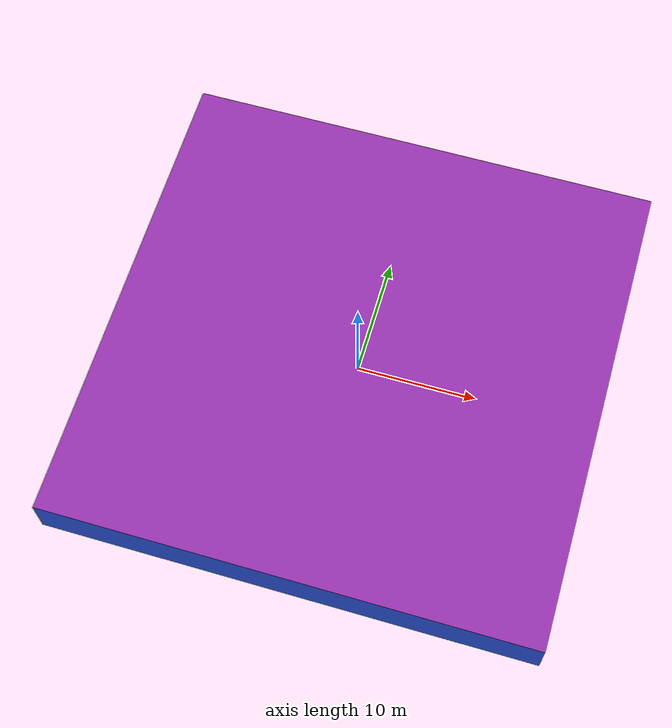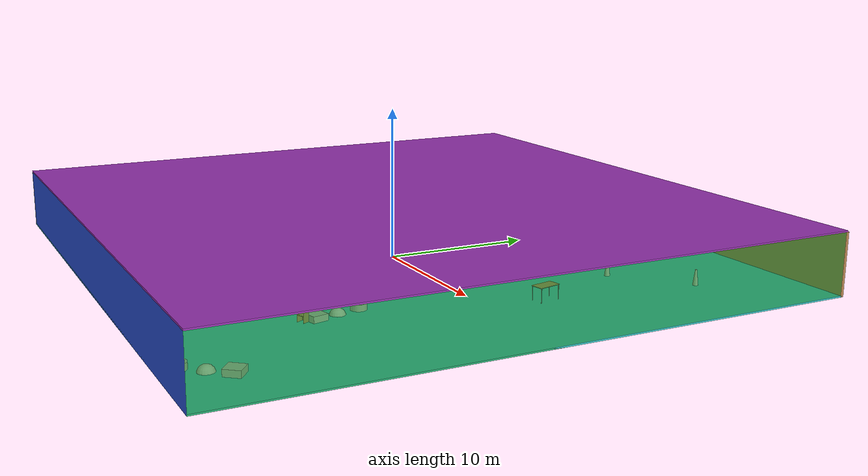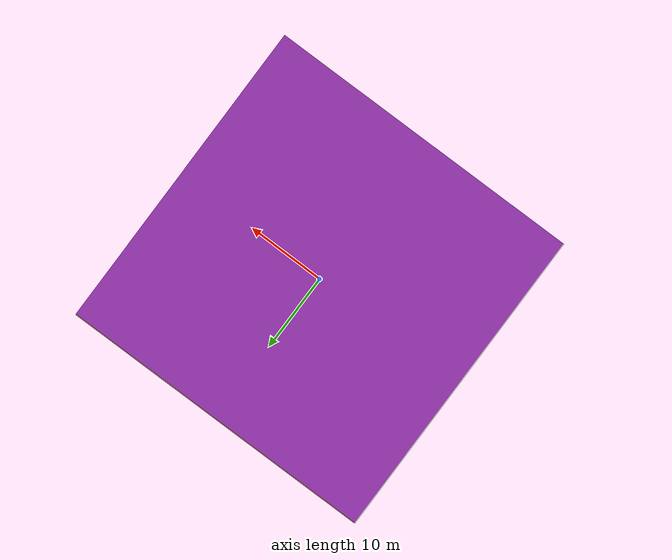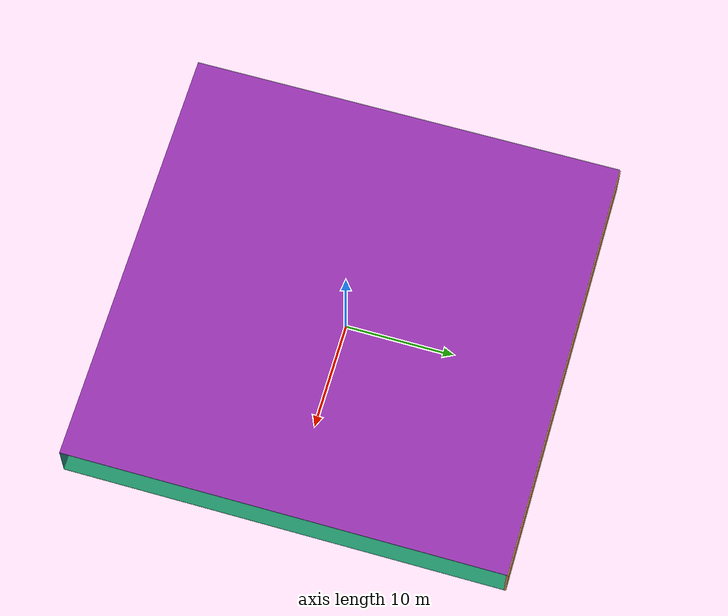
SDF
<sdf version="1.4">
 <world name="default">
  <physics type="ode">
   <max_step_size>0.001</max_step_size>
   <real_time_factor>1</real_time_factor>
   <real_time_update_rate>1000</real_time_update_rate>
   <gravity>0 0 -9.8</gravity>
  </physics>
  <scene><ambient>0.4 0.4 0.4 1</ambient><background>0.7 0.7 0.7 1</background><shadows>1</shadows></scene>
  <model name="Surrounding">
   <static>1</static>
   <link name="Ceiling">
    <collision name="Ceiling_Collision"><geometry><box><size>40 40 0.1</size></box></geometry></collision>
    <visual name="Ceiling_Visual">
     <geometry><box><size>40 40 0.1</size></box></geometry>
     <material>
      <script><uri>file://media/materials/scripts/gazebo.material</uri><name>Gazebo/PurpleGlow</name></script>
     </material>
    </visual>
    <pose>0 0 4.05 0 0 0</pose>
   </link>
   <link name="Wall_South">
    <collision name="Wall_South_Collision">
     <geometry><box><size>40 0 4</size></box></geometry>
     <pose>0 0 2 0 -0 0</pose>
    </collision>
    <visual name="Wall_South_Visual">
     <pose>0 0 2 0 -0 0</pose>
     <geometry><box><size>40 0 4</size></box></geometry>
     <material>
      <script><uri>file://media/materials/scripts/gazebo.material</uri><name>Gazebo/BlueGlow</name></script>
     </material>
    </visual>
    <velocity_decay><linear>0</linear><angular>0</angular></velocity_decay>
    <pose>0 -20 0 0 -0 0</pose>
   </link>
   <link name="Wall_East">
    <collision name="Wall_21_Collision">
     <geometry><box><size>40 0 4</size></box></geometry>
     <pose>0 0 2 0 -0 0</pose>
    </collision>
    <visual name="Wall_21_Visual">
     <pose>0 0 2 0 -0 0</pose>
     <geometry><box><size>40 0 4</size></box></geometry>
     <material>
      <script><uri>file://media/materials/scripts/gazebo.material</uri><name>Gazebo/GreenTransparent</name></script>
     </material>
    </visual>
    <velocity_decay><linear>0</linear><angular>0</angular></velocity_decay>
    <pose>20 0 0 0 -0 1.5708</pose>
   </link>
   <link name="Wall_North">
    <collision name="Wall_22_Collision">
     <geometry><box><size>40 0.2 4</size></box></geometry>
     <pose>0 0 2 0 -0 0</pose>
    </collision>
    <visual name="Wall_22_Visual">
     <pose>0 0 2 0 -0 0</pose>
     <geometry><box><size>40 0.2 4</size></box></geometry>
     <material>
      <script><uri>file://media/materials/scripts/gazebo.material</uri><name>Gazebo/WoodFloor</name></script>
     </material>
    </visual>
    <velocity_decay><linear>0</linear><angular>0</angular></velocity_decay>
    <pose>0 20 0 0 -0 0</pose>
   </link>
   <link name="Wall_West">
    <collision name="Wall_23_Collision">
     <geometry><box><size>40 0.2 4</size></box></geometry>
     <pose>0 0 2 0 -0 0</pose>
    </collision>
    <visual name="Wall_23_Visual">
     <pose>0 0 2 0 -0 0</pose>
     <geometry><box><size>40 0.2 4</size></box></geometry>
     <material>
      <script><uri>file://media/materials/scripts/gazebo.material</uri><name>Gazebo/White</name></script>
     </material>
    </visual>
    <velocity_decay><linear>0</linear><angular>0</angular></velocity_decay>
    <pose>-20 0 0 0 0 -1.5708</pose>
   </link>
   <link name="Ground_link">
    <collision name="collision">
     <pose>0 0 .05 0 -0 0</pose>
     <geometry><box><size>40 40 0.1</size></box></geometry>
    </collision>
    <visual name="visual">
     <pose>0 0 .05 0 -0 0</pose>
     <geometry><box><size>40 40 0.1</size></box></geometry>
     <material>
      <script>
       <uri>file://media/materials/scripts/gazebo.material</uri>
       <name>Gazebo/TurquoiseGlowOutline</name>
      </script>
     </material>
    </visual>
   </link>
   <static>1</static>
  </model>
  <spherical_coordinates>
   <surface_model>EARTH_WGS84</surface_model>
   <latitude_deg>0</latitude_deg>
   <longitude_deg>0</longitude_deg>
   <elevation>0</elevation>
   <heading_deg>0</heading_deg>
  </spherical_coordinates>
  <light name="lightball_0" type="diffuse">
   <diffuse>0.8 0.8 0.8 1</diffuse>
   <specular>0.2 0.2 0.2 1</specular>
   <attenuation>
    <range>100</range>
    <constant>0.7</constant>
    <linear>0.01</linear>
    <quadratic>0.001</quadratic>
   </attenuation>
   <direction>-0.5 0.1 -0.9</direction>
   <pose>5.22481546199 9.62814802732 1.69528099318 0 0 0</pose>
  </light>
  <light name="lightball_1" type="diffuse">
   <diffuse>0.8 0.8 0.8 1</diffuse>
   <specular>0.2 0.2 0.2 1</specular>
   <attenuation>
    <range>100</range>
    <constant>0.7</constant>
    <linear>0.01</linear>
    <quadratic>0.001</quadratic>
   </attenuation>
   <direction>-0.5 0.1 -0.9</direction>
   <pose>-8.63699206354 -19.8327474447 3.1676409708 0 0 0</pose>
  </light>
  <light name="lightball_2" type="diffuse">
   <diffuse>0.8 0.8 0.8 1</diffuse>
   <specular>0.2 0.2 0.2 1</specular>
   <attenuation>
    <range>100</range>
    <constant>0.7</constant>
    <linear>0.01</linear>
    <quadratic>0.001</quadratic>
   </attenuation>
   <direction>-0.5 0.1 -0.9</direction>
   <pose>-5.20945435141 -5.52379506135 1.81256671486 0 0 0</pose>
  </light>
  <light name="lightball_3" type="diffuse">
   <diffuse>0.8 0.8 0.8 1</diffuse>
   <specular>0.2 0.2 0.2 1</specular>
   <attenuation>
    <range>100</range>
    <constant>0.7</constant>
    <linear>0.01</linear>
    <quadratic>0.001</quadratic>
   </attenuation>
   <direction>-0.5 0.1 -0.9</direction>
   <pose>9.14047730335 -9.70137180614 1.03971877403 0 0 0</pose>
  </light>
  <light name="lightball_4" type="diffuse">
   <diffuse>0.8 0.8 0.8 1</diffuse>
   <specular>0.2 0.2 0.2 1</specular>
   <attenuation>
    <range>100</range>
    <constant>0.7</constant>
    <linear>0.01</linear>
    <quadratic>0.001</quadratic>
   </attenuation>
   <direction>-0.5 0.1 -0.9</direction>
   <pose>-3.20811792861 7.95927164334 2.33598312376 0 0 0</pose>
  </light>
  <light name="lightball_5" type="diffuse">
   <diffuse>0.8 0.8 0.8 1</diffuse>
   <specular>0.2 0.2 0.2 1</specular>
   <attenuation>
    <range>100</range>
    <constant>0.7</constant>
    <linear>0.01</linear>
    <quadratic>0.001</quadratic>
   </attenuation>
   <direction>-0.5 0.1 -0.9</direction>
   <pose>-6.6116461072 17.6763749314 2.99890367389 0 0 0</pose>
  </light>
  <light name="lightball_6" type="diffuse">
   <diffuse>0.8 0.8 0.8 1</diffuse>
   <specular>0.2 0.2 0.2 1</specular>
   <attenuation>
    <range>100</range>
    <constant>0.7</constant>
    <linear>0.01</linear>
    <quadratic>0.001</quadratic>
   </attenuation>
   <direction>-0.5 0.1 -0.9</direction>
   <pose>-10.1625997125 -13.1688150288 2.69767292048 0 0 0</pose>
  </light>
  <light name="lightball_7" type="diffuse">
   <diffuse>0.8 0.8 0.8 1</diffuse>
   <specular>0.2 0.2 0.2 1</specular>
   <attenuation>
    <range>100</range>
    <constant>0.7</constant>
    <linear>0.01</linear>
    <quadratic>0.001</quadratic>
   </attenuation>
   <direction>-0.5 0.1 -0.9</direction>
   <pose>11.5510334335 4.2810467878 3.57197887228 0 0 0</pose>
  </light>
  <light name="lightball_8" type="diffuse">
   <diffuse>0.8 0.8 0.8 1</diffuse>
   <specular>0.2 0.2 0.2 1</specular>
   <attenuation>
    <range>100</range>
    <constant>0.7</constant>
    <linear>0.01</linear>
    <quadratic>0.001</quadratic>
   </attenuation>
   <direction>-0.5 0.1 -0.9</direction>
   <pose>17.9101147585 -17.8230880227 3.62259465346 0 0 0</pose>
  </light>
  <light name="lightball_9" type="diffuse">
   <diffuse>0.8 0.8 0.8 1</diffuse>
   <specular>0.2 0.2 0.2 1</specular>
   <attenuation>
    <range>100</range>
    <constant>0.7</constant>
    <linear>0.01</linear>
    <quadratic>0.001</quadratic>
   </attenuation>
   <direction>-0.5 0.1 -0.9</direction>
   <pose>14.2886404662 12.6013312986 3.34231093803 0 0 0</pose>
  </light>
  <light name="lightball_10" type="diffuse">
   <diffuse>0.8 0.8 0.8 1</diffuse>
   <specular>0.2 0.2 0.2 1</specular>
   <attenuation>
    <range>100</range>
    <constant>0.7</constant>
    <linear>0.01</linear>
    <quadratic>0.001</quadratic>
   </attenuation>
   <direction>-0.5 0.1 -0.9</direction>
   <pose>14.7242025265 7.2470983462 3.72013011435 0 0 0</pose>
  </light>
  <include>
   <uri>model://textured_shapes</uri>
   <pose>-11.5684644594 -7.6200080607 0 0 0 0.544910212463</pose>
  </include>
  <include><uri>model://cabinet</uri><pose>-12.6757522907 -0.259586714181 0 0 0 0.641542610776</pose></include>
  <include>
   <uri>model://textured_shapes</uri>
   <pose>-10.4186225571 8.34297126851 0 0 0 1.47427063869</pose>
  </include>
  <include><uri>model://cabinet</uri><pose>-8.41947221348 -9.64260706941 0 0 0 1.58215965429</pose></include>
  <include>
   <uri>model://textured_shapes</uri>
   <pose>-8.0172070732 11.7004967177 0 0 0 1.09001429618</pose>
  </include>
  <include><uri>model://table</uri><pose>-5.61694448851 12.89384323 0 0 0 0.601454433145</pose></include>
  <include>
   <uri>model://construction_cone</uri>
   <pose>-1.56896226952 -7.82960679422 0 0 0 2.55815039414</pose>
  </include>
  <include>
   <uri>model://textured_shapes</uri>
   <pose>-2.52735254055 0.639827935279 0 0 0 1.39261685899</pose>
  </include>
  <include><uri>model://table</uri><pose>-2.88570779656 3.78001738945 0 0 0 0.0124057301397</pose></include>
  <include><uri>model://cabinet</uri><pose>0.723196690513 -18.5509379799 0 0 0 1.34475113572</pose></include>
  <include><uri>model://cabinet</uri><pose>0.842291045456 -8.04517388698 0 0 0 1.14119134486</pose></include>
  <include>
   <uri>model://textured_shapes</uri>
   <pose>-0.149622978429 1.39009738233 0 0 0 0.207495673977</pose>
  </include>
  <include>
   <uri>model://textured_shapes</uri>
   <pose>4.2047329515 -0.137015015391 0 0 0 2.11436350562</pose>
  </include>
  <include>
   <uri>model://construction_cone</uri>
   <pose>4.31706015318 8.53893462159 0 0 0 2.05653075823</pose>
  </include>
  <include><uri>model://cabinet</uri><pose>4.52945033851 12.0078111306 0 0 0 0.540970590123</pose></include>
  <include><uri>model://cabinet</uri><pose>5.71603212173 -8.63539800603 0 0 0 2.4983761575</pose></include>
  <include><uri>model://cabinet</uri><pose>5.39769370893 7.39123539984 0 0 0 0.191111578605</pose></include>
  <include><uri>model://cabinet</uri><pose>10.3556759372 -10.6020779775 0 0 0 2.04808442642</pose></include>
  <include>
   <uri>model://textured_shapes</uri>
   <pose>10.0089186008 -8.36996047662 0 0 0 0.235076088532</pose>
  </include>
  <include>
   <uri>model://construction_cone</uri>
   <pose>10.3390578803 10.0304974555 0 0 0 1.04065053873</pose>
  </include>
  <include><uri>model://table</uri><pose>12.8441446773 3.7158953587 0 0 0 1.75688896958</pose></include>
  <include>
   <uri>model://textured_shapes</uri>
   <pose>15.3196672995 -17.6685766387 0 0 0 2.46713321183</pose>
  </include>
  <include>
   <uri>model://construction_cone</uri>
   <pose>14.4037450865 13.6512375222 0 0 0 2.17549462882</pose>
  </include>
 </world>
</sdf>

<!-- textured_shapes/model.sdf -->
<sdf version="1.6">
  <model name="textured_shapes">
    <pose>0 0 0.5 0 0 0</pose>
    <link name="box">
      <pose>0 -1.5 0 0 0 0</pose>
      <collision name="collision">
        <geometry>
          <box>
            <size>1 1 1</size>
          </box>
        </geometry>
      </collision>
      <visual name="visual">
        <geometry>
          <box>
            <size>1 1 1</size>
          </box>
        </geometry>
        <material>
          <script>
            <uri>model://../model_source/models/textured_shapes/materials/scripts</uri>
            <uri>model://../model_source/models/textured_shapes/materials/textures</uri>
            <name>TexturedShape/Squares</name>
          </script>
        </material>
      </visual>
    </link>
    <link name="sphere">
      <collision name="collision">
        <geometry>
          <sphere>
            <radius>0.5</radius>
          </sphere>
        </geometry>
      </collision>
      <visual name="visual">
        <geometry>
          <sphere>
            <radius>0.5</radius>
          </sphere>
        </geometry>
        <material>
          <script>
            <uri>model://../model_source/models/textured_shapes/materials/scripts</uri>
            <uri>model://../model_source/models/textured_shapes/materials/textures</uri>
            <name>TexturedShape/Squares</name>
          </script>
        </material>
      </visual>
    </link>
    <link name="cylinder">
      <pose>0 1.5 0 0 0 0</pose>
      <collision name="collision">
        <geometry>
          <cylinder>
            <radius>0.5</radius>
            <length>1</length>
          </cylinder>
        </geometry>
      </collision>
      <visual name="visual">
        <geometry>
          <cylinder>
            <radius>0.5</radius>
            <length>1</length>
          </cylinder>
        </geometry>
        <material>
          <script>
            <uri>model://../model_source/models/textured_shapes/materials/scripts</uri>
            <uri>model://../model_source/models/textured_shapes/materials/textures</uri>
            <name>TexturedShape/Squares</name>
          </script>
        </material>
      </visual>
    </link>
  </model>
</sdf>

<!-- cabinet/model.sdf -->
<sdf version="1.5">
  <model name="cabinet">
    <static>true</static>
    <link name="cabinet_bottom_plate">
      <inertial>
        <pose>0 0 -1 0 0 0</pose>
        <inertia>
          <ixx>2.050000</ixx>
          <ixy>0</ixy>
          <ixz>0</ixz>
          <iyy>2.050000</iyy>
          <iyz>0</iyz>
          <izz>2.050000</izz>
        </inertia>
        <mass>25.000000</mass>
      </inertial>
      <collision name="cabinet_bottom_plate_geom">
        <pose>0 0 0.010000 0 0 0</pose>
        <geometry>
          <box>
            <size>0.450000 0.450000 0.020000</size>
          </box>
        </geometry>
      </collision>
      <visual name="cabinet_bottom_plate_geom_visual">
        <pose>0 0 0.010000 0 0 0</pose>
        <geometry>
          <box>
            <size>0.450000 0.450000 0.020000</size>
          </box>
        </geometry>
        <material>
          <script>
            <uri>model://media/materials/scripts/gazebo.material</uri>
            <name>Gazebo/Wood</name>
          </script>
        </material>
      </visual>
      <collision name="cabinet_bottom_plate_geom_cabinet_back_plate">
        <pose>0.235000 0 0.510000 0 0 0</pose>
        <geometry>
          <box>
            <size>0.020000 0.450000 1.020000</size>
          </box>
        </geometry>
      </collision>
      <visual name="cabinet_bottom_plate_geom_cabinet_back_plate_visual">
        <pose>0.235000 0 0.510000 0 0 0</pose>
        <geometry>
          <box>
            <size>0.020000 0.450000 1.020000</size>
          </box>
        </geometry>
        <material>
          <script>
            <uri>model://media/materials/scripts/gazebo.material</uri>
            <name>Gazebo/Wood</name>
          </script>
        </material>
      </visual>
      <collision name="cabinet_bottom_plate_geom_cabinet_left_plate">
        <pose>0 0.235000 0.510000 0 0 0</pose>
        <geometry>
          <box>
            <size>0.450000 0.020000 1.020000</size>
          </box>
        </geometry>
      </collision>
      <visual name="cabinet_bottom_plate_geom_cabinet_left_plate_visual">
        <pose>0 0.235000 0.510000 0 0 0</pose>
        <geometry>
          <box>
            <size>0.450000 0.020000 1.020000</size>
          </box>
        </geometry>
        <material>
          <script>
            <uri>model://media/materials/scripts/gazebo.material</uri>
            <name>Gazebo/Wood</name>
          </script>
        </material>
      </visual>
      <collision name="cabinet_bottom_plate_geom_cabinet_middle_plate">
        <pose>0 0 0.510000 0 0 0</pose>
        <geometry>
          <box>
            <size>0.450000 0.450000 0.020000</size>
          </box>
        </geometry>
      </collision>
      <visual name="cabinet_bottom_plate_geom_cabinet_middle_plate_visual">
        <pose>0 0 0.510000 0 0 0</pose>
        <geometry>
          <box>
            <size>0.450000 0.450000 0.020000</size>
          </box>
        </geometry>
        <material>
          <script>
            <uri>model://media/materials/scripts/gazebo.material</uri>
            <name>Gazebo/Wood</name>
          </script>
        </material>
      </visual>
      <collision name="cabinet_bottom_plate_geom_cabinet_right_plate">
        <pose>0 -0.235000 0.510000 0 0 0</pose>
        <geometry>
          <box>
            <size>0.450000 0.020000 1.020000</size>
          </box>
        </geometry>
      </collision>
      <visual name="cabinet_bottom_plate_geom_cabinet_right_plate_visual">
        <pose>0 -0.235000 0.510000 0 0 0</pose>
        <geometry>
          <box>
            <size>0.450000 0.020000 1.020000</size>
          </box>
        </geometry>
        <material>
          <script>
            <uri>model://media/materials/scripts/gazebo.material</uri>
            <name>Gazebo/Wood</name>
          </script>
        </material>
      </visual>
      <collision name="cabinet_bottom_plate_geom_cabinet_top_plate">
        <pose>0 0 1.010000 0 0 0</pose>
        <geometry>
          <box>
            <size>0.450000 0.450000 0.020000</size>
          </box>
        </geometry>
      </collision>
      <visual name="cabinet_bottom_plate_geom_cabinet_top_plate_visual">
        <pose>0 0 1.010000 0 0 0</pose>
        <geometry>
          <box>
            <size>0.450000 0.450000 0.020000</size>
          </box>
        </geometry>
        <material>
          <script>
            <uri>model://media/materials/scripts/gazebo.material</uri>
            <name>Gazebo/Wood</name>
          </script>
        </material>
      </visual>
    </link>
  </model>
</sdf>

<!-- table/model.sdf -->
<sdf version="1.5">
  <model name="table">
    <static>true</static>
    <link name="link">
      <collision name="surface">
        <pose>0 0 1.0 0 0 0</pose>
        <geometry>
          <box>
            <size>1.5 0.8 0.03</size>
          </box>
        </geometry>
        <surface>
          <friction>
            <ode>
              <mu>0.6</mu>
              <mu2>0.6</mu2>
            </ode>
          </friction>
        </surface>
      </collision>
      <visual name="visual1">
        <pose>0 0 1.0 0 0 0</pose>
        <geometry>
          <box>
            <size>1.5 0.8 0.03</size>
          </box>
        </geometry>
        <material>
          <script>
            <uri>model://media/materials/scripts/gazebo.material</uri>
            <name>Gazebo/Wood</name>
          </script>
        </material>
      </visual>
      <collision name="front_left_leg">
        <pose>0.68 0.38 0.5 0 0 0</pose>
        <geometry>
          <cylinder>
            <radius>0.02</radius>
            <length>1.0</length>
          </cylinder>
        </geometry>
      </collision>
      <visual name="front_left_leg">
        <pose>0.68 0.38 0.5 0 0 0</pose>
        <geometry>
          <cylinder>
            <radius>0.02</radius>
            <length>1.0</length>
          </cylinder>
        </geometry>
        <material>
          <script>
            <uri>model://media/materials/scripts/gazebo.material</uri>
            <name>Gazebo/Grey</name>
          </script>
        </material>
      </visual>
      <collision name="front_right_leg">
        <pose>0.68 -0.38 0.5 0 0 0</pose>
        <geometry>
          <cylinder>
            <radius>0.02</radius>
            <length>1.0</length>
          </cylinder>
        </geometry>
      </collision>
      <visual name="front_right_leg">
        <pose>0.68 -0.38 0.5 0 0 0</pose>
        <geometry>
          <cylinder>
            <radius>0.02</radius>
            <length>1.0</length>
          </cylinder>
        </geometry>
        <material>
          <script>
            <uri>model://media/materials/scripts/gazebo.material</uri>
            <name>Gazebo/Grey</name>
          </script>
        </material>
      </visual>
      <collision name="back_right_leg">
        <pose>-0.68 -0.38 0.5 0 0 0</pose>
        <geometry>
          <cylinder>
            <radius>0.02</radius>
            <length>1.0</length>
          </cylinder>
        </geometry>
      </collision>
      <visual name="back_right_leg">
        <pose>-0.68 -0.38 0.5 0 0 0</pose>
        <geometry>
          <cylinder>
            <radius>0.02</radius>
            <length>1.0</length>
          </cylinder>
        </geometry>
        <material>
          <script>
            <uri>model://media/materials/scripts/gazebo.material</uri>
            <name>Gazebo/Grey</name>
          </script>
        </material>
      </visual>
      <collision name="back_left_leg">
        <pose>-0.68 0.38 0.5 0 0 0</pose>
        <geometry>
          <cylinder>
            <radius>0.02</radius>
            <length>1.0</length>
          </cylinder>
        </geometry>
      </collision>
      <visual name="back_left_leg">
        <pose>-0.68 0.38 0.5 0 0 0</pose>
        <geometry>
          <cylinder>
            <radius>0.02</radius>
            <length>1.0</length>
          </cylinder>
        </geometry>
        <material>
          <script>
            <uri>model://media/materials/scripts/gazebo.material</uri>
            <name>Gazebo/Grey</name>
          </script>
        </material>
      </visual>
    </link>
  </model>
</sdf>

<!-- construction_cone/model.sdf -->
<sdf version="1.5">
  <model name="Construction Cone">
    <link name="link">
      <collision name="collision">
        <geometry>
          <mesh>
            <scale>10 10 10</scale>
            <uri>file://isr-testbed/construction_cone/meshes/construction_cone.dae</uri>
          </mesh>
        </geometry>
      </collision>
      <visual name="visual">
        <geometry>
          <mesh>
            <scale>10 10 10</scale>
            <uri>file://isr-testbed/construction_cone/meshes/construction_cone.dae</uri>
          </mesh>
        </geometry>
      </visual>
    </link>
  </model>
</sdf>
